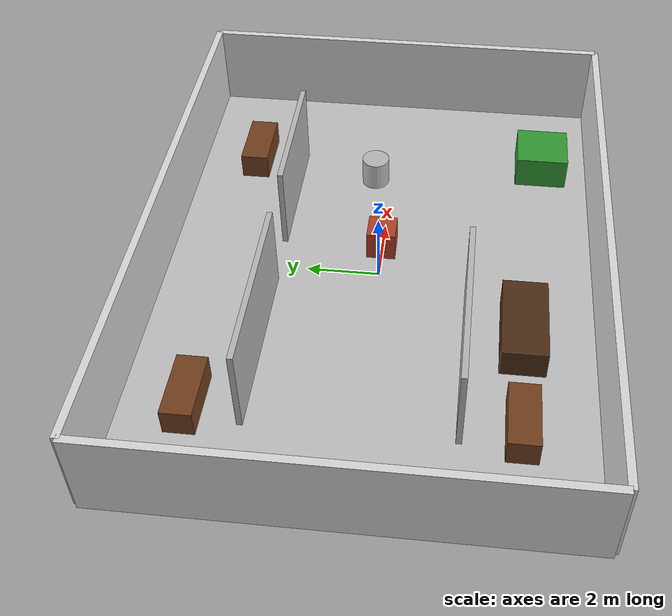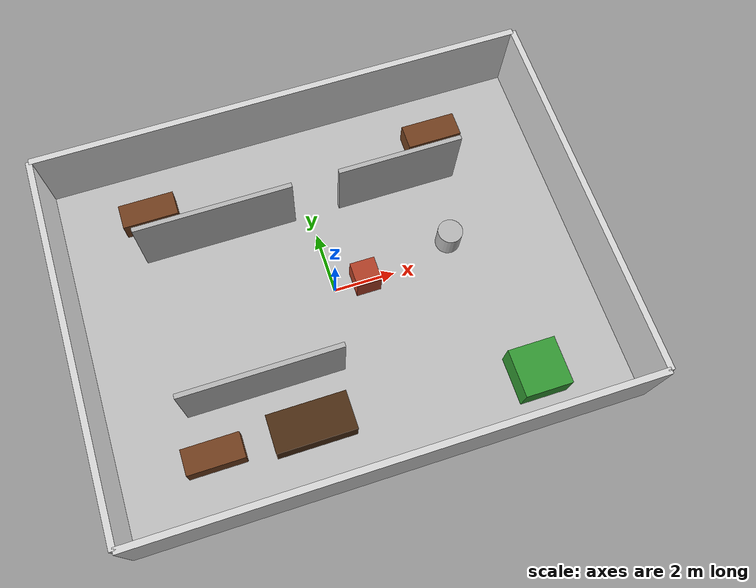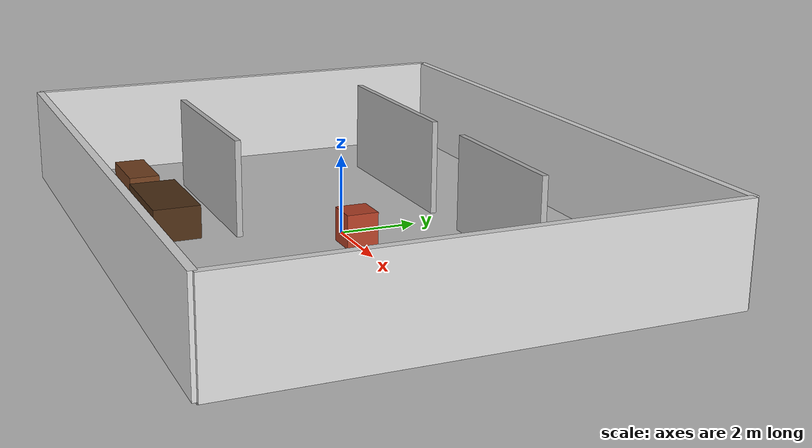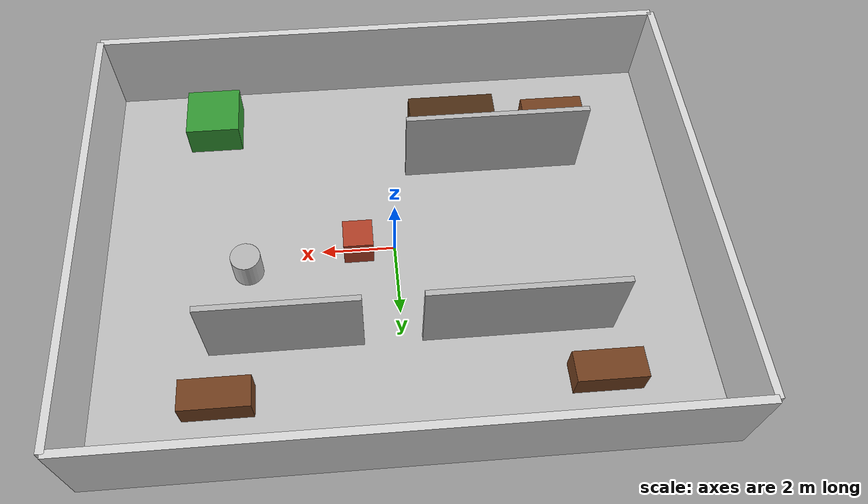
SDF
<?xml version="1.0" ?>

<sdf version="1.9">

  <world name="delivery_world">

    <!-- REQUIRED SYSTEM PLUGINS   -->

    <plugin
      filename="gz-sim-physics-system"
      name="gz::sim::systems::Physics"/>

    <plugin
      filename="gz-sim-user-commands-system"
      name="gz::sim::systems::UserCommands"/>

    <plugin
      filename="gz-sim-scene-broadcaster-system"
      name="gz::sim::systems::SceneBroadcaster"/>

    <plugin
      filename="gz-sim-sensors-system"
      name="gz::sim::systems::Sensors">
      <render_engine>ogre2</render_engine>
    </plugin>

    <gravity>0 0 -9.81</gravity>

    <!-- LIGHT                     -->

    <light type="directional" name="sun">

      <cast_shadows>true</cast_shadows>

      <pose>0 0 10 0 0 0</pose>

      <diffuse>0.8 0.8 0.8 1</diffuse>
      <specular>0.2 0.2 0.2 1</specular>

      <attenuation>
        <range>1000</range>
        <constant>0.9</constant>
        <linear>0.01</linear>
        <quadratic>0.001</quadratic>
      </attenuation>

      <direction>-0.5 0.1 -0.9</direction>

    </light>

    <!-- OFFICE FLOOR              -->

    <model name="office_floor">

      <static>true</static>

      <link name="floor_link">

        <collision name="floor_collision">

          <geometry>
            <box>
              <size>16 12 0.1</size>
            </box>
          </geometry>

        </collision>

        <visual name="floor_visual">

          <geometry>
            <box>
              <size>16 12 0.1</size>
            </box>
          </geometry>

          <material>
            <ambient>0.75 0.75 0.75 1</ambient>
            <diffuse>0.75 0.75 0.75 1</diffuse>
          </material>

        </visual>

      </link>

    </model>

    <!-- OUTER OFFICE WALLS        -->

    <!-- North wall -->
    <model name="north_wall">

      <static>true</static>

      <pose>0 6 1.25 0 0 0</pose>

      <link name="link">

        <collision name="collision">
          <geometry>
            <box>
              <size>16 0.2 2.5</size>
            </box>
          </geometry>
        </collision>

        <visual name="visual">

          <geometry>
            <box>
              <size>16 0.2 2.5</size>
            </box>
          </geometry>

          <material>
            <ambient>0.85 0.85 0.85 1</ambient>
            <diffuse>0.85 0.85 0.85 1</diffuse>
          </material>

        </visual>

      </link>

    </model>

    <!-- South wall -->
    <model name="south_wall">

      <static>true</static>

      <pose>0 -6 1.25 0 0 0</pose>

      <link name="link">

        <collision name="collision">
          <geometry>
            <box>
              <size>16 0.2 2.5</size>
            </box>
          </geometry>
        </collision>

        <visual name="visual">

          <geometry>
            <box>
              <size>16 0.2 2.5</size>
            </box>
          </geometry>

          <material>
            <ambient>0.85 0.85 0.85 1</ambient>
            <diffuse>0.85 0.85 0.85 1</diffuse>
          </material>

        </visual>

      </link>

    </model>

    <!-- West wall -->
    <model name="west_wall">

      <static>true</static>

      <pose>-8 0 1.25 0 0 0</pose>

      <link name="link">

        <collision name="collision">
          <geometry>
            <box>
              <size>0.2 12 2.5</size>
            </box>
          </geometry>
        </collision>

        <visual name="visual">

          <geometry>
            <box>
              <size>0.2 12 2.5</size>
            </box>
          </geometry>

          <material>
            <ambient>0.85 0.85 0.85 1</ambient>
            <diffuse>0.85 0.85 0.85 1</diffuse>
          </material>

        </visual>

      </link>

    </model>

    <!-- East wall -->
    <model name="east_wall">

      <static>true</static>

      <pose>8 0 1.25 0 0 0</pose>

      <link name="link">

        <collision name="collision">
          <geometry>
            <box>
              <size>0.2 12 2.5</size>
            </box>
          </geometry>
        </collision>

        <visual name="visual">

          <geometry>
            <box>
              <size>0.2 12 2.5</size>
            </box>
          </geometry>

          <material>
            <ambient>0.85 0.85 0.85 1</ambient>
            <diffuse>0.85 0.85 0.85 1</diffuse>
          </material>

        </visual>

      </link>

    </model>

    <!-- INTERIOR OFFICE WALLS     -->

    <model name="office_partition_1">

      <static>true</static>

      <pose>-3 2.8 1.25 0 0 0</pose>

      <link name="link">

        <collision name="collision">
          <geometry>
            <box>
              <size>5 0.15 2.5</size>
            </box>
          </geometry>
        </collision>

        <visual name="visual">
          <geometry>
            <box>
              <size>5 0.15 2.5</size>
            </box>
          </geometry>
        </visual>

      </link>

    </model>

    <model name="office_partition_2">

      <static>true</static>

      <pose>3 2.8 1.25 0 0 0</pose>

      <link name="link">

        <collision name="collision">
          <geometry>
            <box>
              <size>4 0.15 2.5</size>
            </box>
          </geometry>
        </collision>

        <visual name="visual">
          <geometry>
            <box>
              <size>4 0.15 2.5</size>
            </box>
          </geometry>
        </visual>

      </link>

    </model>

    <model name="meeting_room_wall">

      <static>true</static>

      <pose>-3 -2.5 1.25 0 0 0</pose>

      <link name="link">

        <collision name="collision">
          <geometry>
            <box>
              <size>5 0.15 2.5</size>
            </box>
          </geometry>
        </collision>

        <visual name="visual">
          <geometry>
            <box>
              <size>5 0.15 2.5</size>
            </box>
          </geometry>
        </visual>

      </link>

    </model>

    <!-- DESKS                     -->

    <model name="desk_1">

      <static>true</static>

      <pose>-5 4.2 0.4 0 0 0</pose>

      <link name="link">

        <collision name="collision">
          <geometry>
            <box>
              <size>1.8 0.8 0.8</size>
            </box>
          </geometry>
        </collision>

        <visual name="visual">

          <geometry>
            <box>
              <size>1.8 0.8 0.8</size>
            </box>
          </geometry>

          <material>
            <ambient>0.45 0.25 0.12 1</ambient>
            <diffuse>0.45 0.25 0.12 1</diffuse>
          </material>

        </visual>

      </link>

    </model>

    <model name="desk_2">

      <static>true</static>

      <pose>4.7 4.2 0.4 0 0 0</pose>

      <link name="link">

        <collision name="collision">
          <geometry>
            <box>
              <size>1.8 0.8 0.8</size>
            </box>
          </geometry>
        </collision>

        <visual name="visual">

          <geometry>
            <box>
              <size>1.8 0.8 0.8</size>
            </box>
          </geometry>

          <material>
            <ambient>0.45 0.25 0.12 1</ambient>
            <diffuse>0.45 0.25 0.12 1</diffuse>
          </material>

        </visual>

      </link>

    </model>

    <model name="desk_3">

      <static>true</static>

      <pose>-5 -4 0.4 0 0 0</pose>

      <link name="link">

        <collision name="collision">
          <geometry>
            <box>
              <size>1.8 0.8 0.8</size>
            </box>
          </geometry>
        </collision>

        <visual name="visual">

          <geometry>
            <box>
              <size>1.8 0.8 0.8</size>
            </box>
          </geometry>

          <material>
            <ambient>0.45 0.25 0.12 1</ambient>
            <diffuse>0.45 0.25 0.12 1</diffuse>
          </material>

        </visual>

      </link>

    </model>

    <!-- MEETING TABLE             -->

    <model name="meeting_table">

      <static>true</static>

      <pose>-2 -4 0.45 0 0 0</pose>

      <link name="link">

        <collision name="collision">
          <geometry>
            <box>
              <size>2.5 1.2 0.9</size>
            </box>
          </geometry>
        </collision>

        <visual name="visual">

          <geometry>
            <box>
              <size>2.5 1.2 0.9</size>
            </box>
          </geometry>

          <material>
            <ambient>0.30 0.18 0.08 1</ambient>
            <diffuse>0.30 0.18 0.08 1</diffuse>
          </material>

        </visual>

      </link>

    </model>

    <!-- DELIVERY STATION          -->

    <model name="delivery_station">

      <static>true</static>

      <pose>5 -4.5 0.5 0 0 0</pose>

      <link name="link">

        <collision name="collision">
          <geometry>
            <box>
              <size>1.5 1.5 1.0</size>
            </box>
          </geometry>
        </collision>

        <visual name="visual">

          <geometry>
            <box>
              <size>1.5 1.5 1.0</size>
            </box>
          </geometry>

          <material>
            <ambient>0.2 0.6 0.2 1</ambient>
            <diffuse>0.2 0.6 0.2 1</diffuse>
          </material>

        </visual>

      </link>

    </model>

    <!-- EXTRA OBSTACLES           -->

    <model name="office_obstacle_1">

      <static>true</static>

      <pose>1 0 0.45 0 0 0</pose>

      <link name="link">

        <collision name="collision">
          <geometry>
            <box>
              <size>0.8 0.8 0.9</size>
            </box>
          </geometry>
        </collision>

        <visual name="visual">

          <geometry>
            <box>
              <size>0.8 0.8 0.9</size>
            </box>
          </geometry>

          <material>
            <ambient>0.7 0.25 0.15 1</ambient>
            <diffuse>0.7 0.25 0.15 1</diffuse>
          </material>

        </visual>

      </link>

    </model>

    <model name="office_obstacle_2">

      <static>true</static>

      <pose>4 0.5 0.45 0 0 0</pose>

      <link name="link">

        <collision name="collision">
          <geometry>
            <cylinder>
              <radius>0.4</radius>
              <length>0.9</length>
            </cylinder>
          </geometry>
        </collision>

        <visual name="visual">

          <geometry>
            <cylinder>
              <radius>0.4</radius>
              <length>0.9</length>
            </cylinder>
          </geometry>

        </visual>

      </link>

    </model>

  </world>

</sdf>
